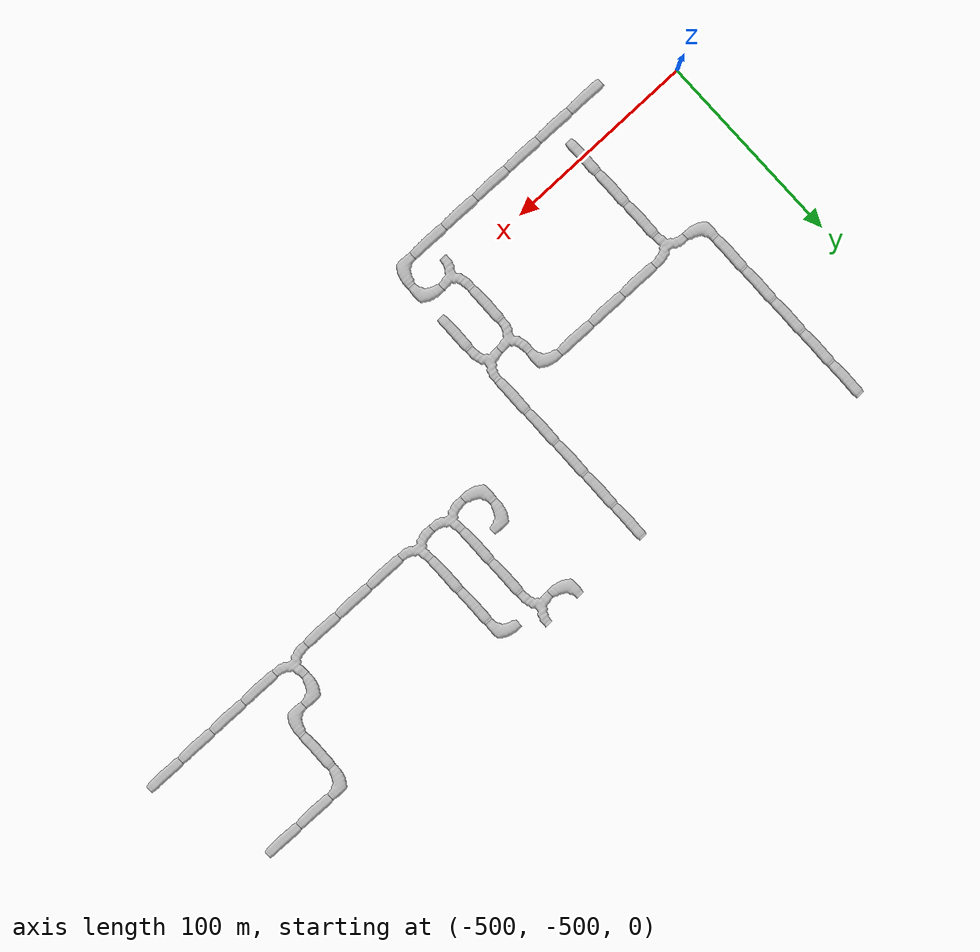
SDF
<sdf version="1.6">
 <world name="cave_32000">
  <include>
   <static>true</static>
   <name>cave_-23_-26</name>
   <pose>-460 -520 0 0 0 1.5707963267948966</pose>
   <uri>model://cave_straight_20m</uri>
  </include>
  <include>
   <static>true</static>
   <name>cave_-22_-26</name>
   <pose>-440 -520 0 0 0 1.5707963267948966</pose>
   <uri>model://cave_straight_20m</uri>
  </include>
  <include>
   <static>true</static>
   <name>cave_-21_-26</name>
   <pose>-420 -520 0 0 0 1.5707963267948966</pose>
   <uri>model://cave_straight_20m</uri>
  </include>
  <include>
   <static>true</static>
   <name>cave_-20_-26</name>
   <pose>-400 -520 0 0 0 1.5707963267948966</pose>
   <uri>model://cave_straight_20m</uri>
  </include>
  <include>
   <static>true</static>
   <name>cave_-19_-26</name>
   <pose>-380 -520 0 0 0 1.5707963267948966</pose>
   <uri>model://cave_straight_20m</uri>
  </include>
  <include>
   <static>true</static>
   <name>cave_-18_-26</name>
   <pose>-360 -520 0 0 0 1.5707963267948966</pose>
   <uri>model://cave_straight_20m</uri>
  </include>
  <include>
   <static>true</static>
   <name>cave_-17_-26</name>
   <pose>-340 -520 0 0 0 1.5707963267948966</pose>
   <uri>model://cave_L_20m</uri>
  </include>
  <include>
   <static>true</static>
   <name>cave_-17_-25</name>
   <pose>-340 -500 0 0 0 3.141592653589793</pose>
   <uri>model://cave_L_20m</uri>
  </include>
  <include>
   <static>true</static>
   <name>cave_-18_-25</name>
   <pose>-360 -500 0 0 0 -1.5707963267948966</pose>
   <uri>model://cave_3way_20m</uri>
  </include>
  <include>
   <static>true</static>
   <name>cave_-18_-24</name>
   <pose>-360 -480 0 0 0 0.0</pose>
   <uri>model://cave_straight_20m</uri>
  </include>
  <include>
   <static>true</static>
   <name>cave_-18_-23</name>
   <pose>-360 -460 0 0 0 -1.5707963267948966</pose>
   <uri>model://cave_3way_20m</uri>
  </include>
  <include>
   <static>true</static>
   <name>cave_-17_-23</name>
   <pose>-340 -460 0 0 0 1.5707963267948966</pose>
   <uri>model://cave_3way_20m</uri>
  </include>
  <include>
   <static>true</static>
   <name>cave_-17_-24</name>
   <pose>-340 -480 0 0 0 0.0</pose>
   <uri>model://cave_straight_20m</uri>
  </include>
  <include>
   <static>true</static>
   <name>cave_-17_-22</name>
   <pose>-340 -440 0 0 0 0.0</pose>
   <uri>model://cave_straight_20m</uri>
  </include>
  <include>
   <static>true</static>
   <name>cave_-17_-21</name>
   <pose>-340 -420 0 0 0 0.0</pose>
   <uri>model://cave_straight_20m</uri>
  </include>
  <include>
   <static>true</static>
   <name>cave_-17_-20</name>
   <pose>-340 -400 0 0 0 0.0</pose>
   <uri>model://cave_straight_20m</uri>
  </include>
  <include>
   <static>true</static>
   <name>cave_-17_-19</name>
   <pose>-340 -380 0 0 0 0.0</pose>
   <uri>model://cave_straight_20m</uri>
  </include>
  <include>
   <static>true</static>
   <name>cave_-17_-18</name>
   <pose>-340 -360 0 0 0 0.0</pose>
   <uri>model://cave_straight_20m</uri>
  </include>
  <include>
   <static>true</static>
   <name>cave_-15_-18</name>
   <pose>-300 -360 0 0 0 0.0</pose>
   <uri>model://cave_L_20m</uri>
  </include>
  <include>
   <static>true</static>
   <name>cave_-14_-18</name>
   <pose>-280 -360 0 0 0 1.5707963267948966</pose>
   <uri>model://cave_3way_20m</uri>
  </include>
  <include>
   <static>true</static>
   <name>cave_-14_-19</name>
   <pose>-280 -380 0 0 0 0.0</pose>
   <uri>model://cave_straight_20m</uri>
  </include>
  <include>
   <static>true</static>
   <name>cave_-14_-20</name>
   <pose>-280 -400 0 0 0 0.0</pose>
   <uri>model://cave_straight_20m</uri>
  </include>
  <include>
   <static>true</static>
   <name>cave_-14_-21</name>
   <pose>-280 -420 0 0 0 0.0</pose>
   <uri>model://cave_3way_20m</uri>
  </include>
  <include>
   <static>true</static>
   <name>cave_-13_-21</name>
   <pose>-260 -420 0 0 0 0.0</pose>
   <uri>model://cave_3way_20m</uri>
  </include>
  <include>
   <static>true</static>
   <name>cave_-12_-21</name>
   <pose>-240 -420 0 0 0 1.5707963267948966</pose>
   <uri>model://cave_straight_20m</uri>
  </include>
  <include>
   <static>true</static>
   <name>cave_-11_-21</name>
   <pose>-220 -420 0 0 0 1.5707963267948966</pose>
   <uri>model://cave_straight_20m</uri>
  </include>
  <include>
   <static>true</static>
   <name>cave_-10_-21</name>
   <pose>-200 -420 0 0 0 1.5707963267948966</pose>
   <uri>model://cave_straight_20m</uri>
  </include>
  <include>
   <static>true</static>
   <name>cave_-9_-21</name>
   <pose>-180 -420 0 0 0 0.0</pose>
   <uri>model://cave_3way_20m</uri>
  </include>
  <include>
   <static>true</static>
   <name>cave_-8_-21</name>
   <pose>-160 -420 0 0 0 1.5707963267948966</pose>
   <uri>model://cave_straight_20m</uri>
  </include>
  <include>
   <static>true</static>
   <name>cave_-7_-21</name>
   <pose>-140 -420 0 0 0 1.5707963267948966</pose>
   <uri>model://cave_straight_20m</uri>
  </include>
  <include>
   <static>true</static>
   <name>cave_-6_-21</name>
   <pose>-120 -420 0 0 0 1.5707963267948966</pose>
   <uri>model://cave_straight_20m</uri>
  </include>
  <include>
   <static>true</static>
   <name>cave_-5_-21</name>
   <pose>-100 -420 0 0 0 1.5707963267948966</pose>
   <uri>model://cave_straight_20m</uri>
  </include>
  <include>
   <static>true</static>
   <name>cave_-9_-20</name>
   <pose>-180 -400 0 0 0 -1.5707963267948966</pose>
   <uri>model://cave_L_20m</uri>
  </include>
  <include>
   <static>true</static>
   <name>cave_-8_-20</name>
   <pose>-160 -400 0 0 0 1.5707963267948966</pose>
   <uri>model://cave_L_20m</uri>
  </include>
  <include>
   <static>true</static>
   <name>cave_-8_-19</name>
   <pose>-160 -380 0 0 0 0.0</pose>
   <uri>model://cave_straight_20m</uri>
  </include>
  <include>
   <static>true</static>
   <name>cave_-8_-18</name>
   <pose>-160 -360 0 0 0 -1.5707963267948966</pose>
   <uri>model://cave_L_20m</uri>
  </include>
  <include>
   <static>true</static>
   <name>cave_-7_-18</name>
   <pose>-140 -360 0 0 0 1.5707963267948966</pose>
   <uri>model://cave_straight_20m</uri>
  </include>
  <include>
   <static>true</static>
   <name>cave_-6_-18</name>
   <pose>-120 -360 0 0 0 1.5707963267948966</pose>
   <uri>model://cave_straight_20m</uri>
  </include>
  <include>
   <static>true</static>
   <name>cave_-13_-20</name>
   <pose>-260 -400 0 0 0 0.0</pose>
   <uri>model://cave_straight_20m</uri>
  </include>
  <include>
   <static>true</static>
   <name>cave_-13_-19</name>
   <pose>-260 -380 0 0 0 0.0</pose>
   <uri>model://cave_straight_20m</uri>
  </include>
  <include>
   <static>true</static>
   <name>cave_-13_-18</name>
   <pose>-260 -360 0 0 0 3.141592653589793</pose>
   <uri>model://cave_L_20m</uri>
  </include>
  <include>
   <static>true</static>
   <name>cave_-15_-21</name>
   <pose>-300 -420 0 0 0 0.0</pose>
   <uri>model://cave_L_20m</uri>
  </include>
  <include>
   <static>true</static>
   <name>cave_-15_-20</name>
   <pose>-300 -400 0 0 0 -1.5707963267948966</pose>
   <uri>model://cave_L_20m</uri>
  </include>
  <include>
   <static>true</static>
   <name>cave_-18_-22</name>
   <pose>-360 -440 0 0 0 3.141592653589793</pose>
   <uri>model://cave_L_20m</uri>
  </include>
  <include>
   <static>true</static>
   <name>cave_-19_-22</name>
   <pose>-380 -440 0 0 0 1.5707963267948966</pose>
   <uri>model://cave_straight_20m</uri>
  </include>
  <include>
   <static>true</static>
   <name>cave_-20_-22</name>
   <pose>-400 -440 0 0 0 1.5707963267948966</pose>
   <uri>model://cave_straight_20m</uri>
  </include>
  <include>
   <static>true</static>
   <name>cave_-21_-22</name>
   <pose>-420 -440 0 0 0 1.5707963267948966</pose>
   <uri>model://cave_straight_20m</uri>
  </include>
  <include>
   <static>true</static>
   <name>cave_-22_-22</name>
   <pose>-440 -440 0 0 0 3.141592653589793</pose>
   <uri>model://cave_3way_20m</uri>
  </include>
  <include>
   <static>true</static>
   <name>cave_-22_-23</name>
   <pose>-440 -460 0 0 0 0.0</pose>
   <uri>model://cave_straight_20m</uri>
  </include>
  <include>
   <static>true</static>
   <name>cave_-22_-24</name>
   <pose>-440 -480 0 0 0 0.0</pose>
   <uri>model://cave_straight_20m</uri>
  </include>
  <include>
   <static>true</static>
   <name>cave_-22_-25</name>
   <pose>-440 -500 0 0 0 0.0</pose>
   <uri>model://cave_straight_20m</uri>
  </include>
  <include>
   <static>true</static>
   <name>cave_-23_-22</name>
   <pose>-460 -440 0 0 0 0.0</pose>
   <uri>model://cave_L_20m</uri>
  </include>
  <include>
   <static>true</static>
   <name>cave_-23_-21</name>
   <pose>-460 -420 0 0 0 0.0</pose>
   <uri>model://cave_straight_20m</uri>
  </include>
  <include>
   <static>true</static>
   <name>cave_-23_-20</name>
   <pose>-460 -400 0 0 0 0.0</pose>
   <uri>model://cave_straight_20m</uri>
  </include>
  <include>
   <static>true</static>
   <name>cave_-23_-19</name>
   <pose>-460 -380 0 0 0 0.0</pose>
   <uri>model://cave_straight_20m</uri>
  </include>
  <include>
   <static>true</static>
   <name>cave_-23_-18</name>
   <pose>-460 -360 0 0 0 0.0</pose>
   <uri>model://cave_straight_20m</uri>
  </include>
  <include>
   <static>true</static>
   <name>cave_-23_-17</name>
   <pose>-460 -340 0 0 0 0.0</pose>
   <uri>model://cave_straight_20m</uri>
  </include>
 </world>
</sdf>
